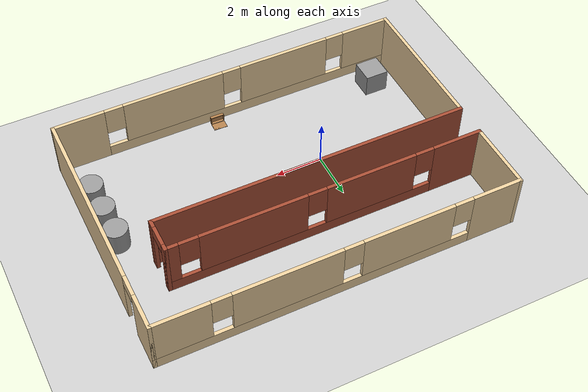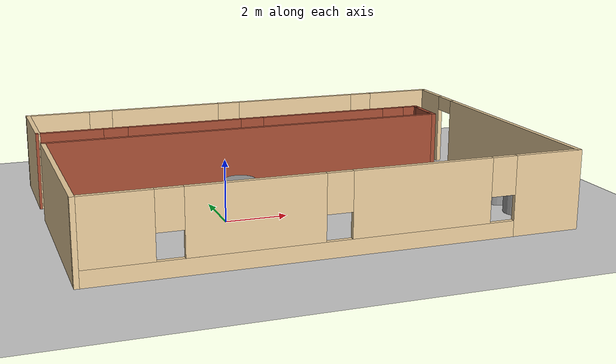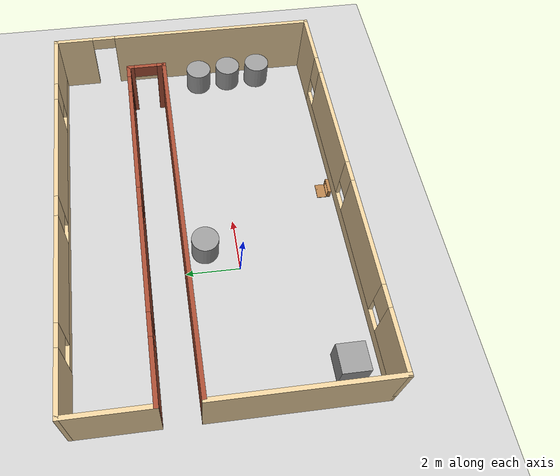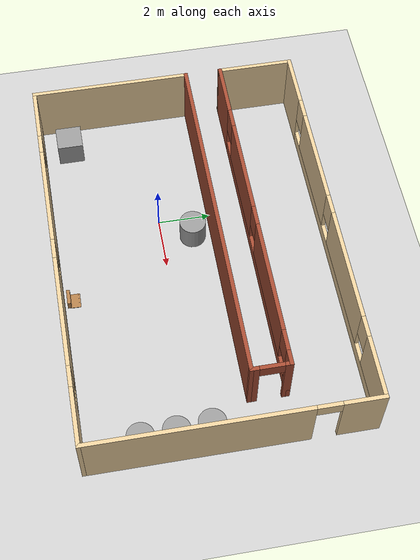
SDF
<sdf version="1.7">
 <world name="default">
  <light name="sun" type="directional">
   <pose>0 0 10 0 -0 0</pose>
   <diffuse>0.8 0.8 0.8 1</diffuse>
   <specular>0.2 0.2 0.2 1</specular>
   <attenuation>
    <range>1000</range>
    <constant>0.9</constant>
    <linear>0.01</linear>
    <quadratic>0.001</quadratic>
   </attenuation>
   <direction>-0.5 0.1 -0.9</direction>
   <spot><inner_angle>0</inner_angle><outer_angle>0</outer_angle><falloff>0</falloff></spot>
  </light>
  <model name="ground_plane">
   <static>1</static>
   <link name="link">
    <collision name="collision">
     <geometry><plane><normal>0 0 1</normal><size>100 100</size></plane></geometry>
     <surface><friction><ode><mu>100</mu><mu2>50</mu2></ode></friction></surface>
    </collision>
    <visual name="visual">
     <cast_shadows>0</cast_shadows>
     <geometry><plane><normal>0 0 1</normal><size>100 100</size></plane></geometry>
     <material>
      <script><uri>file://media/materials/scripts/gazebo.material</uri><name>Gazebo/Grey</name></script>
     </material>
    </visual>
   </link>
  </model>
  <gravity>0 0 -9.8</gravity>
  <magnetic_field>6e-06 2.3e-05 -4.2e-05</magnetic_field>
  <atmosphere type="adiabatic"/>
  <physics type="ode">
   <max_step_size>0.001</max_step_size>
   <real_time_factor>1</real_time_factor>
   <real_time_update_rate>1000</real_time_update_rate>
  </physics>
  <scene><ambient>0.4 0.4 0.4 1</ambient><background>0.7 0.7 0.7 1</background><shadows>1</shadows></scene>
  <audio><device>default</device></audio>
  <spherical_coordinates>
   <surface_model>EARTH_WGS84</surface_model>
   <latitude_deg>0</latitude_deg>
   <longitude_deg>0</longitude_deg>
   <elevation>0</elevation>
   <heading_deg>0</heading_deg>
  </spherical_coordinates>
  <model name="factory_1">
   <pose>2.30445 1.04451 0 0 -0 0</pose>
   <link name="Wall_1">
    <pose>-0 5.175 0 0 -0 0</pose>
    <visual name="Wall_1_Visual_0">
     <pose>-6.54406 0 1.25 0 -0 0</pose>
     <geometry><box><size>2.16188 0.15 2.5</size></box></geometry>
     <material>
      <script><uri>file://media/materials/scripts/gazebo.material</uri><name>Gazebo/Grey</name></script>
      <ambient>0.921569 0.807843 0.615686 1</ambient>
     </material>
     <meta><layer>0</layer></meta>
    </visual>
    <collision name="Wall_1_Collision_0">
     <geometry><box><size>2.16188 0.15 2.5</size></box></geometry>
     <pose>-6.54406 0 1.25 0 -0 0</pose>
    </collision>
    <visual name="Wall_1_Visual_1">
     <pose>1.08094 0 0.25 0 -0 0</pose>
     <geometry><box><size>13.0881 0.15 0.5</size></box></geometry>
     <material>
      <script><uri>file://media/materials/scripts/gazebo.material</uri><name>Gazebo/Grey</name></script>
      <ambient>0.921569 0.807843 0.615686 1</ambient>
     </material>
     <meta><layer>0</layer></meta>
    </visual>
    <collision name="Wall_1_Collision_1">
     <geometry><box><size>13.0881 0.15 0.5</size></box></geometry>
     <pose>1.08094 0 0.25 0 -0 0</pose>
    </collision>
    <visual name="Wall_1_Visual_2">
     <pose>-2.72373 0 1.5 0 -0 0</pose>
     <geometry><box><size>3.87878 0.15 2</size></box></geometry>
     <material>
      <script><uri>file://media/materials/scripts/gazebo.material</uri><name>Gazebo/Grey</name></script>
      <ambient>0.921569 0.807843 0.615686 1</ambient>
     </material>
     <meta><layer>0</layer></meta>
    </visual>
    <collision name="Wall_1_Collision_2">
     <geometry><box><size>3.87878 0.15 2</size></box></geometry>
     <pose>-2.72373 0 1.5 0 -0 0</pose>
    </collision>
    <visual name="Wall_1_Visual_3">
     <pose>2.23647 0 1.5 0 -0 0</pose>
     <geometry><box><size>4.44164 0.15 2</size></box></geometry>
     <material>
      <script><uri>file://media/materials/scripts/gazebo.material</uri><name>Gazebo/Grey</name></script>
      <ambient>0.921569 0.807843 0.615686 1</ambient>
     </material>
     <meta><layer>0</layer></meta>
    </visual>
    <collision name="Wall_1_Collision_3">
     <geometry><box><size>4.44164 0.15 2</size></box></geometry>
     <pose>2.23647 0 1.5 0 -0 0</pose>
    </collision>
    <visual name="Wall_1_Visual_4">
     <pose>6.44115 0 1.5 0 -0 0</pose>
     <geometry><box><size>2.36771 0.15 2</size></box></geometry>
     <material>
      <script><uri>file://media/materials/scripts/gazebo.material</uri><name>Gazebo/Grey</name></script>
      <ambient>0.921569 0.807843 0.615686 1</ambient>
     </material>
     <meta><layer>0</layer></meta>
    </visual>
    <collision name="Wall_1_Collision_4">
     <geometry><box><size>2.36771 0.15 2</size></box></geometry>
     <pose>6.44115 0 1.5 0 -0 0</pose>
    </collision>
    <visual name="Wall_1_Visual_5">
     <pose>-5.06312 0 1.9 0 -0 0</pose>
     <geometry><box><size>0.8 0.15 1.2</size></box></geometry>
     <material>
      <script><uri>file://media/materials/scripts/gazebo.material</uri><name>Gazebo/Grey</name></script>
      <ambient>0.921569 0.807843 0.615686 1</ambient>
     </material>
     <meta><layer>0</layer></meta>
    </visual>
    <collision name="Wall_1_Collision_5">
     <geometry><box><size>0.8 0.15 1.2</size></box></geometry>
     <pose>-5.06312 0 1.9 0 -0 0</pose>
    </collision>
    <visual name="Wall_1_Visual_6">
     <pose>-0.384343 0 1.9 0 -0 0</pose>
     <geometry><box><size>0.8 0.15 1.2</size></box></geometry>
     <material>
      <script><uri>file://media/materials/scripts/gazebo.material</uri><name>Gazebo/Grey</name></script>
      <ambient>0.921569 0.807843 0.615686 1</ambient>
     </material>
     <meta><layer>0</layer></meta>
    </visual>
    <collision name="Wall_1_Collision_6">
     <geometry><box><size>0.8 0.15 1.2</size></box></geometry>
     <pose>-0.384343 0 1.9 0 -0 0</pose>
    </collision>
    <visual name="Wall_1_Visual_7">
     <pose>4.85729 0 1.9 0 -0 0</pose>
     <geometry><box><size>0.8 0.15 1.2</size></box></geometry>
     <material>
      <script><uri>file://media/materials/scripts/gazebo.material</uri><name>Gazebo/Grey</name></script>
      <ambient>0.921569 0.807843 0.615686 1</ambient>
     </material>
     <meta><layer>0</layer></meta>
    </visual>
    <collision name="Wall_1_Collision_7">
     <geometry><box><size>0.8 0.15 1.2</size></box></geometry>
     <pose>4.85729 0 1.9 0 -0 0</pose>
    </collision>
   </link>
   <link name="Wall_11">
    <pose>-0.875 2.325 0 0 -0 0</pose>
    <visual name="Wall_11_Visual_0">
     <pose>-5.66233 0 1.25 0 -0 0</pose>
     <geometry><box><size>2.17534 0.15 2.5</size></box></geometry>
     <material>
      <script><uri>file://media/materials/scripts/gazebo.material</uri><name>Gazebo/Bricks</name></script>
      <ambient>1 1 1 1</ambient>
     </material>
     <meta><layer>0</layer></meta>
    </visual>
    <collision name="Wall_11_Collision_0">
     <geometry><box><size>2.17534 0.15 2.5</size></box></geometry>
     <pose>-5.66233 0 1.25 0 -0 0</pose>
    </collision>
    <visual name="Wall_11_Visual_1">
     <pose>1.08767 0 0.25 0 -0 0</pose>
     <geometry><box><size>11.3247 0.15 0.5</size></box></geometry>
     <material>
      <script><uri>file://media/materials/scripts/gazebo.material</uri><name>Gazebo/Bricks</name></script>
      <ambient>1 1 1 1</ambient>
     </material>
     <meta><layer>0</layer></meta>
    </visual>
    <collision name="Wall_11_Collision_1">
     <geometry><box><size>11.3247 0.15 0.5</size></box></geometry>
     <pose>1.08767 0 0.25 0 -0 0</pose>
    </collision>
    <visual name="Wall_11_Visual_2">
     <pose>-1.83384 0 1.5 0 -0 0</pose>
     <geometry><box><size>3.88164 0.15 2</size></box></geometry>
     <material>
      <script><uri>file://media/materials/scripts/gazebo.material</uri><name>Gazebo/Bricks</name></script>
      <ambient>1 1 1 1</ambient>
     </material>
     <meta><layer>0</layer></meta>
    </visual>
    <collision name="Wall_11_Collision_2">
     <geometry><box><size>3.88164 0.15 2</size></box></geometry>
     <pose>-1.83384 0 1.5 0 -0 0</pose>
    </collision>
    <visual name="Wall_11_Visual_3">
     <pose>3.1404 0 1.5 0 -0 0</pose>
     <geometry><box><size>4.46684 0.15 2</size></box></geometry>
     <material>
      <script><uri>file://media/materials/scripts/gazebo.material</uri><name>Gazebo/Bricks</name></script>
      <ambient>1 1 1 1</ambient>
     </material>
     <meta><layer>0</layer></meta>
    </visual>
    <collision name="Wall_11_Collision_3">
     <geometry><box><size>4.46684 0.15 2</size></box></geometry>
     <pose>3.1404 0 1.5 0 -0 0</pose>
    </collision>
    <visual name="Wall_11_Visual_4">
     <pose>6.46191 0 1.5 0 -0 0</pose>
     <geometry><box><size>0.576184 0.15 2</size></box></geometry>
     <material>
      <script><uri>file://media/materials/scripts/gazebo.material</uri><name>Gazebo/Bricks</name></script>
      <ambient>1 1 1 1</ambient>
     </material>
     <meta><layer>0</layer></meta>
    </visual>
    <collision name="Wall_11_Collision_4">
     <geometry><box><size>0.576184 0.15 2</size></box></geometry>
     <pose>6.46191 0 1.5 0 -0 0</pose>
    </collision>
    <visual name="Wall_11_Visual_5">
     <pose>-4.17466 0 1.9 0 -0 0</pose>
     <geometry><box><size>0.8 0.15 1.2</size></box></geometry>
     <material>
      <script><uri>file://media/materials/scripts/gazebo.material</uri><name>Gazebo/Bricks</name></script>
      <ambient>1 1 1 1</ambient>
     </material>
     <meta><layer>0</layer></meta>
    </visual>
    <collision name="Wall_11_Collision_5">
     <geometry><box><size>0.8 0.15 1.2</size></box></geometry>
     <pose>-4.17466 0 1.9 0 -0 0</pose>
    </collision>
    <visual name="Wall_11_Visual_6">
     <pose>0.506977 0 1.9 0 -0 0</pose>
     <geometry><box><size>0.8 0.15 1.2</size></box></geometry>
     <material>
      <script><uri>file://media/materials/scripts/gazebo.material</uri><name>Gazebo/Bricks</name></script>
      <ambient>1 1 1 1</ambient>
     </material>
     <meta><layer>0</layer></meta>
    </visual>
    <collision name="Wall_11_Collision_6">
     <geometry><box><size>0.8 0.15 1.2</size></box></geometry>
     <pose>0.506977 0 1.9 0 -0 0</pose>
    </collision>
    <visual name="Wall_11_Visual_7">
     <pose>5.77382 0 1.9 0 -0 0</pose>
     <geometry><box><size>0.8 0.15 1.2</size></box></geometry>
     <material>
      <script><uri>file://media/materials/scripts/gazebo.material</uri><name>Gazebo/Bricks</name></script>
      <ambient>1 1 1 1</ambient>
     </material>
     <meta><layer>0</layer></meta>
    </visual>
    <collision name="Wall_11_Collision_7">
     <geometry><box><size>0.8 0.15 1.2</size></box></geometry>
     <pose>5.77382 0 1.9 0 -0 0</pose>
    </collision>
   </link>
   <link name="Wall_12">
    <pose>5.8 1.625 0 0 -0 -1.5708</pose>
    <visual name="Wall_12_Visual_0">
     <pose>-0.628373 0 1.25 0 -0 0</pose>
     <geometry><box><size>0.293253 0.15 2.5</size></box></geometry>
     <material>
      <script><uri>file://media/materials/scripts/gazebo.material</uri><name>Gazebo/Bricks</name></script>
      <ambient>1 1 1 1</ambient>
     </material>
     <meta><layer>0</layer></meta>
    </visual>
    <collision name="Wall_12_Collision_0">
     <geometry><box><size>0.293253 0.15 2.5</size></box></geometry>
     <pose>-0.628373 0 1.25 0 -0 0</pose>
    </collision>
    <visual name="Wall_12_Visual_1">
     <pose>0.596627 0 1.25 0 -0 0</pose>
     <geometry><box><size>0.356747 0.15 2.5</size></box></geometry>
     <material>
      <script><uri>file://media/materials/scripts/gazebo.material</uri><name>Gazebo/Bricks</name></script>
      <ambient>1 1 1 1</ambient>
     </material>
     <meta><layer>0</layer></meta>
    </visual>
    <collision name="Wall_12_Collision_1">
     <geometry><box><size>0.356747 0.15 2.5</size></box></geometry>
     <pose>0.596627 0 1.25 0 -0 0</pose>
    </collision>
    <visual name="Wall_12_Visual_2">
     <pose>-0.031747 0 2.25 0 -0 0</pose>
     <geometry><box><size>0.9 0.15 0.5</size></box></geometry>
     <material>
      <script><uri>file://media/materials/scripts/gazebo.material</uri><name>Gazebo/Bricks</name></script>
      <ambient>1 1 1 1</ambient>
     </material>
     <meta><layer>0</layer></meta>
    </visual>
    <collision name="Wall_12_Collision_2">
     <geometry><box><size>0.9 0.15 0.5</size></box></geometry>
     <pose>-0.031747 0 2.25 0 -0 0</pose>
    </collision>
   </link>
   <link name="Wall_2">
    <pose>7.55 -0 0 0 -0 -1.5708</pose>
    <visual name="Wall_2_Visual_0">
     <pose>-4.47638 0 1.25 0 -0 0</pose>
     <geometry><box><size>1.54724 0.15 2.5</size></box></geometry>
     <material>
      <script><uri>file://media/materials/scripts/gazebo.material</uri><name>Gazebo/Grey</name></script>
      <ambient>0.921569 0.807843 0.615686 1</ambient>
     </material>
     <meta><layer>0</layer></meta>
    </visual>
    <collision name="Wall_2_Collision_0">
     <geometry><box><size>1.54724 0.15 2.5</size></box></geometry>
     <pose>-4.47638 0 1.25 0 -0 0</pose>
    </collision>
    <visual name="Wall_2_Visual_1">
     <pose>1.22362 0 1.25 0 -0 0</pose>
     <geometry><box><size>8.05276 0.15 2.5</size></box></geometry>
     <material>
      <script><uri>file://media/materials/scripts/gazebo.material</uri><name>Gazebo/Grey</name></script>
      <ambient>0.921569 0.807843 0.615686 1</ambient>
     </material>
     <meta><layer>0</layer></meta>
    </visual>
    <collision name="Wall_2_Collision_1">
     <geometry><box><size>8.05276 0.15 2.5</size></box></geometry>
     <pose>1.22362 0 1.25 0 -0 0</pose>
    </collision>
    <visual name="Wall_2_Visual_2">
     <pose>-3.25276 0 2.25 0 -0 0</pose>
     <geometry><box><size>0.9 0.15 0.5</size></box></geometry>
     <material>
      <script><uri>file://media/materials/scripts/gazebo.material</uri><name>Gazebo/Grey</name></script>
      <ambient>0.921569 0.807843 0.615686 1</ambient>
     </material>
     <meta><layer>0</layer></meta>
    </visual>
    <collision name="Wall_2_Collision_2">
     <geometry><box><size>0.9 0.15 0.5</size></box></geometry>
     <pose>-3.25276 0 2.25 0 -0 0</pose>
    </collision>
   </link>
   <link name="Wall_3">
    <pose>-0 -5.175 0 0 -0 3.14159</pose>
    <visual name="Wall_3_Visual_0">
     <pose>-6.51511 0 1.25 0 -0 0</pose>
     <geometry><box><size>2.21978 0.15 2.5</size></box></geometry>
     <material>
      <script><uri>file://media/materials/scripts/gazebo.material</uri><name>Gazebo/Grey</name></script>
      <ambient>0.921569 0.807843 0.615686 1</ambient>
     </material>
     <meta><layer>0</layer></meta>
    </visual>
    <collision name="Wall_3_Collision_0">
     <geometry><box><size>2.21978 0.15 2.5</size></box></geometry>
     <pose>-6.51511 0 1.25 0 -0 0</pose>
    </collision>
    <visual name="Wall_3_Visual_1">
     <pose>1.10989 0 0.25 0 -0 0</pose>
     <geometry><box><size>13.0302 0.15 0.5</size></box></geometry>
     <material>
      <script><uri>file://media/materials/scripts/gazebo.material</uri><name>Gazebo/Grey</name></script>
      <ambient>0.921569 0.807843 0.615686 1</ambient>
     </material>
     <meta><layer>0</layer></meta>
    </visual>
    <collision name="Wall_3_Collision_1">
     <geometry><box><size>13.0302 0.15 0.5</size></box></geometry>
     <pose>1.10989 0 0.25 0 -0 0</pose>
    </collision>
    <visual name="Wall_3_Visual_2">
     <pose>-2.4117 0 1.5 0 -0 0</pose>
     <geometry><box><size>4.38704 0.15 2</size></box></geometry>
     <material>
      <script><uri>file://media/materials/scripts/gazebo.material</uri><name>Gazebo/Grey</name></script>
      <ambient>0.921569 0.807843 0.615686 1</ambient>
     </material>
     <meta><layer>0</layer></meta>
    </visual>
    <collision name="Wall_3_Collision_2">
     <geometry><box><size>4.38704 0.15 2</size></box></geometry>
     <pose>-2.4117 0 1.5 0 -0 0</pose>
    </collision>
    <visual name="Wall_3_Visual_3">
     <pose>2.60244 0 1.5 0 -0 0</pose>
     <geometry><box><size>4.04124 0.15 2</size></box></geometry>
     <material>
      <script><uri>file://media/materials/scripts/gazebo.material</uri><name>Gazebo/Grey</name></script>
      <ambient>0.921569 0.807843 0.615686 1</ambient>
     </material>
     <meta><layer>0</layer></meta>
    </visual>
    <collision name="Wall_3_Collision_3">
     <geometry><box><size>4.04124 0.15 2</size></box></geometry>
     <pose>2.60244 0 1.5 0 -0 0</pose>
    </collision>
    <visual name="Wall_3_Visual_4">
     <pose>6.52403 0 1.5 0 -0 0</pose>
     <geometry><box><size>2.20194 0.15 2</size></box></geometry>
     <material>
      <script><uri>file://media/materials/scripts/gazebo.material</uri><name>Gazebo/Grey</name></script>
      <ambient>0.921569 0.807843 0.615686 1</ambient>
     </material>
     <meta><layer>0</layer></meta>
    </visual>
    <collision name="Wall_3_Collision_4">
     <geometry><box><size>2.20194 0.15 2</size></box></geometry>
     <pose>6.52403 0 1.5 0 -0 0</pose>
    </collision>
    <visual name="Wall_3_Visual_5">
     <pose>-5.00522 0 1.9 0 -0 0</pose>
     <geometry><box><size>0.8 0.15 1.2</size></box></geometry>
     <material>
      <script><uri>file://media/materials/scripts/gazebo.material</uri><name>Gazebo/Grey</name></script>
      <ambient>0.921569 0.807843 0.615686 1</ambient>
     </material>
     <meta><layer>0</layer></meta>
    </visual>
    <collision name="Wall_3_Collision_5">
     <geometry><box><size>0.8 0.15 1.2</size></box></geometry>
     <pose>-5.00522 0 1.9 0 -0 0</pose>
    </collision>
    <visual name="Wall_3_Visual_6">
     <pose>0.181822 0 1.9 0 -0 0</pose>
     <geometry><box><size>0.8 0.15 1.2</size></box></geometry>
     <material>
      <script><uri>file://media/materials/scripts/gazebo.material</uri><name>Gazebo/Grey</name></script>
      <ambient>0.921569 0.807843 0.615686 1</ambient>
     </material>
     <meta><layer>0</layer></meta>
    </visual>
    <collision name="Wall_3_Collision_6">
     <geometry><box><size>0.8 0.15 1.2</size></box></geometry>
     <pose>0.181822 0 1.9 0 -0 0</pose>
    </collision>
    <visual name="Wall_3_Visual_7">
     <pose>5.02306 0 1.9 0 -0 0</pose>
     <geometry><box><size>0.8 0.15 1.2</size></box></geometry>
     <material>
      <script><uri>file://media/materials/scripts/gazebo.material</uri><name>Gazebo/Grey</name></script>
      <ambient>0.921569 0.807843 0.615686 1</ambient>
     </material>
     <meta><layer>0</layer></meta>
    </visual>
    <collision name="Wall_3_Collision_7">
     <geometry><box><size>0.8 0.15 1.2</size></box></geometry>
     <pose>5.02306 0 1.9 0 -0 0</pose>
    </collision>
   </link>
   <link name="Wall_6">
    <collision name="Wall_6_Collision">
     <geometry><box><size>3 0.15 2.5</size></box></geometry>
     <pose>0 0 1.25 0 -0 0</pose>
    </collision>
    <visual name="Wall_6_Visual">
     <pose>0 0 1.25 0 -0 0</pose>
     <geometry><box><size>3 0.15 2.5</size></box></geometry>
     <material>
      <script><uri>file://media/materials/scripts/gazebo.material</uri><name>Gazebo/Grey</name></script>
      <ambient>0.921569 0.807843 0.615686 1</ambient>
     </material>
     <meta><layer>0</layer></meta>
    </visual>
    <pose>-7.55 3.75 0 0 -0 -1.5708</pose>
   </link>
   <link name="Wall_8">
    <collision name="Wall_8_Collision">
     <geometry><box><size>6.25 0.15 2.5</size></box></geometry>
     <pose>0 0 1.25 0 -0 0</pose>
    </collision>
    <visual name="Wall_8_Visual">
     <pose>0 0 1.25 0 -0 0</pose>
     <geometry><box><size>6.25 0.15 2.5</size></box></geometry>
     <material>
      <script><uri>file://media/materials/scripts/gazebo.material</uri><name>Gazebo/Grey</name></script>
      <ambient>0.921569 0.807843 0.615686 1</ambient>
     </material>
     <meta><layer>0</layer></meta>
    </visual>
    <pose>-7.55 -2.125 0 0 -0 1.5708</pose>
   </link>
   <link name="Wall_9">
    <collision name="Wall_9_Collision">
     <geometry><box><size>13.5 0.15 2.5</size></box></geometry>
     <pose>0 0 1.25 0 -0 0</pose>
    </collision>
    <visual name="Wall_9_Visual">
     <pose>0 0 1.25 0 -0 0</pose>
     <geometry><box><size>13.5 0.15 2.5</size></box></geometry>
     <material>
      <script><uri>file://media/materials/scripts/gazebo.material</uri><name>Gazebo/Bricks</name></script>
      <ambient>1 1 1 1</ambient>
     </material>
     <meta><layer>0</layer></meta>
    </visual>
    <pose>-0.875 0.925 0 0 -0 0</pose>
   </link>
   <static>1</static>
  </model>
  <model name="unit_box">
   <pose>-4.05913 -3.0234 0.499995 0 1e-05 -5e-06</pose>
   <link name="link">
    <inertial>
     <mass>1</mass>
     <inertia>
      <ixx>0.166667</ixx>
      <ixy>0</ixy>
      <ixz>0</ixz>
      <iyy>0.166667</iyy>
      <iyz>0</iyz>
      <izz>0.166667</izz>
     </inertia>
    </inertial>
    <collision name="collision"><geometry><box><size>1 1 1</size></box></geometry></collision>
    <visual name="visual">
     <geometry><box><size>1 1 1</size></box></geometry>
     <material>
      <script><name>Gazebo/Grey</name><uri>file://media/materials/scripts/gazebo.material</uri></script>
     </material>
    </visual>
   </link>
  </model>
  <model name="unit_cylinder">
   <pose>9.11223 0.471762 0.499994 -3e-06 -1e-06 -0</pose>
   <link name="link">
    <inertial>
     <mass>1</mass>
     <inertia><ixx>0.145833</ixx><ixy>0</ixy><ixz>0</ixz><iyy>0.145833</iyy><iyz>0</iyz><izz>0.125</izz></inertia>
    </inertial>
    <collision name="collision">
     <geometry><cylinder><radius>0.5</radius><length>1</length></cylinder></geometry>
    </collision>
    <visual name="visual">
     <geometry><cylinder><radius>0.5</radius><length>1</length></cylinder></geometry>
     <material>
      <script><name>Gazebo/Grey</name><uri>file://media/materials/scripts/gazebo.material</uri></script>
     </material>
    </visual>
   </link>
  </model>
  <model name="unit_cylinder_0">
   <pose>9.17866 -0.784456 0.499996 3e-06 1e-06 -0</pose>
   <link name="link">
    <inertial>
     <mass>1</mass>
     <inertia><ixx>0.145833</ixx><ixy>0</ixy><ixz>0</ixz><iyy>0.145833</iyy><iyz>0</iyz><izz>0.125</izz></inertia>
    </inertial>
    <collision name="collision">
     <geometry><cylinder><radius>0.5</radius><length>1</length></cylinder></geometry>
    </collision>
    <visual name="visual">
     <geometry><cylinder><radius>0.5</radius><length>1</length></cylinder></geometry>
     <material>
      <script><name>Gazebo/Grey</name><uri>file://media/materials/scripts/gazebo.material</uri></script>
     </material>
    </visual>
   </link>
  </model>
  <model name="unit_cylinder_1">
   <pose>9.21097 -2.04979 0.499994 -3e-06 -1e-06 -0</pose>
   <link name="link">
    <inertial>
     <mass>1</mass>
     <inertia><ixx>0.145833</ixx><ixy>0</ixy><ixz>0</ixz><iyy>0.145833</iyy><iyz>0</iyz><izz>0.125</izz></inertia>
    </inertial>
    <collision name="collision">
     <geometry><cylinder><radius>0.5</radius><length>1</length></cylinder></geometry>
    </collision>
    <visual name="visual">
     <geometry><cylinder><radius>0.5</radius><length>1</length></cylinder></geometry>
     <material>
      <script><name>Gazebo/Grey</name><uri>file://media/materials/scripts/gazebo.material</uri></script>
     </material>
    </visual>
   </link>
  </model>
  <model name="wooden_case_metal_peg">
   <frame name="wooden_case::__model__" attached_to="wooden_case::base">
    <pose relative_to="__model__">0 0 0 0 -0 0</pose>
   </frame>
   <link name="wooden_case::base">
    <pose relative_to="wooden_case::__model__">0 0 0.024 0 -0 0</pose>
    <inertial>
     <pose>-0.022184 0 0.171592 0 -0 0</pose>
     <mass>3.96264</mass>
     <inertia>
      <ixx>0.213536</ixx>
      <ixy>0</ixy>
      <ixz>0.000779377</ixz>
      <iyy>0.0708943</iyy>
      <iyz>0</iyz>
      <izz>0.154604</izz>
     </inertia>
    </inertial>
    <collision name="collision_back">
     <pose>-0.053975 0 0.1778 0 -0 0</pose>
     <geometry><box><size>0.01905 0.5461 0.3175</size></box></geometry>
     <surface>
      <contact>
       <poissons_ratio>0.347</poissons_ratio>
       <elastic_modulus>8.8e+09</elastic_modulus>
       <ode><kp>100000</kp><kd>100</kd><max_vel>100</max_vel><min_depth>0.001</min_depth></ode>
      </contact>
      <friction>
       <torsional>
        <coefficient>1</coefficient>
        <use_patch_radius>0</use_patch_radius>
        <surface_radius>0.01</surface_radius>
       </torsional>
      </friction>
     </surface>
    </collision>
    <visual name="visual_back">
     <pose>-0.053975 0 0.1778 0 -0 0</pose>
     <geometry><box><size>0.01905 0.5461 0.3175</size></box></geometry>
     <material>
      <script><uri>file://media/materials/scripts/gazebo.material</uri><name>Gazebo/Wood</name></script>
     </material>
    </visual>
    <collision name="collision_bottom">
     <pose>0 0 0.009525 0 -0 0</pose>
     <geometry><box><size>0.127 0.5842 0.01905</size></box></geometry>
     <surface>
      <contact>
       <poissons_ratio>0.347</poissons_ratio>
       <elastic_modulus>8.8e+09</elastic_modulus>
       <ode><kp>100000</kp><kd>100</kd><max_vel>100</max_vel><min_depth>0.001</min_depth></ode>
      </contact>
      <friction>
       <torsional>
        <coefficient>1</coefficient>
        <use_patch_radius>0</use_patch_radius>
        <surface_radius>0.01</surface_radius>
       </torsional>
      </friction>
     </surface>
    </collision>
    <visual name="visual_bottom">
     <pose>0 0 0.009525 0 -0 0</pose>
     <geometry><box><size>0.127 0.5842 0.01905</size></box></geometry>
     <material>
      <script><uri>file://media/materials/scripts/gazebo.material</uri><name>Gazebo/Wood</name></script>
     </material>
    </visual>
    <collision name="collision_top">
     <pose>0 0 0.346075 0 -0 0</pose>
     <geometry><box><size>0.127 0.5842 0.01905</size></box></geometry>
     <surface>
      <contact>
       <poissons_ratio>0.347</poissons_ratio>
       <elastic_modulus>8.8e+09</elastic_modulus>
       <ode><kp>100000</kp><kd>100</kd><max_vel>100</max_vel><min_depth>0.001</min_depth></ode>
      </contact>
      <friction>
       <torsional>
        <coefficient>1</coefficient>
        <use_patch_radius>0</use_patch_radius>
        <surface_radius>0.01</surface_radius>
       </torsional>
      </friction>
     </surface>
    </collision>
    <visual name="visual_top">
     <pose>0 0 0.346075 0 -0 0</pose>
     <geometry><box><size>0.127 0.5842 0.01905</size></box></geometry>
     <material>
      <script><uri>file://media/materials/scripts/gazebo.material</uri><name>Gazebo/Wood</name></script>
     </material>
    </visual>
    <collision name="collision_left">
     <pose>0 -0.282575 0.1778 0 -0 0</pose>
     <geometry><box><size>0.127 0.01905 0.3175</size></box></geometry>
     <surface>
      <contact>
       <poissons_ratio>0.347</poissons_ratio>
       <elastic_modulus>8.8e+09</elastic_modulus>
       <ode><kp>100000</kp><kd>100</kd><max_vel>100</max_vel><min_depth>0.001</min_depth></ode>
      </contact>
      <friction>
       <torsional>
        <coefficient>1</coefficient>
        <use_patch_radius>0</use_patch_radius>
        <surface_radius>0.01</surface_radius>
       </torsional>
      </friction>
     </surface>
    </collision>
    <visual name="visual_left">
     <pose>0 -0.282575 0.1778 0 -0 0</pose>
     <geometry><box><size>0.127 0.01905 0.3175</size></box></geometry>
     <material>
      <script><uri>file://media/materials/scripts/gazebo.material</uri><name>Gazebo/Wood</name></script>
     </material>
    </visual>
    <collision name="collision_right">
     <pose>0 0.282575 0.1778 0 -0 0</pose>
     <geometry><box><size>0.127 0.01905 0.3175</size></box></geometry>
     <surface>
      <contact>
       <poissons_ratio>0.347</poissons_ratio>
       <elastic_modulus>8.8e+09</elastic_modulus>
       <ode><kp>100000</kp><kd>100</kd><max_vel>100</max_vel><min_depth>0.001</min_depth></ode>
      </contact>
      <friction>
       <torsional>
        <coefficient>1</coefficient>
        <use_patch_radius>0</use_patch_radius>
        <surface_radius>0.01</surface_radius>
       </torsional>
      </friction>
     </surface>
    </collision>
    <visual name="visual_right">
     <pose>0 0.282575 0.1778 0 -0 0</pose>
     <geometry><box><size>0.127 0.01905 0.3175</size></box></geometry>
     <material>
      <script><uri>file://media/materials/scripts/gazebo.material</uri><name>Gazebo/Wood</name></script>
     </material>
    </visual>
    <collision name="collision_block_left">
     <pose>0.0095 -0.2151 -0.012 0 -0 0</pose>
     <geometry><box><size>0.108 0.05 0.024</size></box></geometry>
     <surface>
      <contact>
       <poissons_ratio>0.347</poissons_ratio>
       <elastic_modulus>8.8e+09</elastic_modulus>
       <ode><kp>100000</kp><kd>100</kd><max_vel>100</max_vel><min_depth>0.001</min_depth></ode>
      </contact>
      <friction>
       <torsional>
        <coefficient>1</coefficient>
        <use_patch_radius>0</use_patch_radius>
        <surface_radius>0.01</surface_radius>
       </torsional>
      </friction>
     </surface>
    </collision>
    <visual name="visual_block_left">
     <pose>0.0095 -0.2151 -0.012 0 -0 0</pose>
     <geometry><box><size>0.108 0.05 0.024</size></box></geometry>
     <material>
      <script><uri>file://media/materials/scripts/gazebo.material</uri><name>Gazebo/Wood</name></script>
     </material>
    </visual>
    <collision name="collision_block_right">
     <pose>0.0095 0.2151 -0.012 0 -0 0</pose>
     <geometry><box><size>0.108 0.05 0.024</size></box></geometry>
     <surface>
      <contact>
       <poissons_ratio>0.347</poissons_ratio>
       <elastic_modulus>8.8e+09</elastic_modulus>
       <ode><kp>100000</kp><kd>100</kd><max_vel>100</max_vel><min_depth>0.001</min_depth></ode>
      </contact>
      <friction>
       <torsional>
        <coefficient>1</coefficient>
        <use_patch_radius>0</use_patch_radius>
        <surface_radius>0.01</surface_radius>
       </torsional>
      </friction>
     </surface>
    </collision>
    <visual name="visual_block_right">
     <pose>0.0095 0.2151 -0.012 0 -0 0</pose>
     <geometry><box><size>0.108 0.05 0.024</size></box></geometry>
     <material>
      <script><uri>file://media/materials/scripts/gazebo.material</uri><name>Gazebo/Wood</name></script>
     </material>
    </visual>
   </link>
   <link name="wooden_case::lid">
    <pose relative_to="wooden_case::__model__">0.243775 0 0.009525 0 -0 0</pose>
    <inertial>
     <mass>1.97874</mass>
     <inertia>
      <ixx>0.0563367</ixx>
      <ixy>0</ixy>
      <ixz>0</ixz>
      <iyy>0.020911</iyy>
      <iyz>0</iyz>
      <izz>0.0771281</izz>
     </inertia>
    </inertial>
    <collision name="collision">
     <geometry><box><size>0.3556 0.5842 0.01905</size></box></geometry>
     <surface>
      <contact>
       <poissons_ratio>0.347</poissons_ratio>
       <elastic_modulus>8.8e+09</elastic_modulus>
       <ode><kp>100000</kp><kd>100</kd><max_vel>100</max_vel><min_depth>0.001</min_depth></ode>
      </contact>
      <friction>
       <torsional>
        <coefficient>1</coefficient>
        <use_patch_radius>0</use_patch_radius>
        <surface_radius>0.01</surface_radius>
       </torsional>
      </friction>
     </surface>
    </collision>
    <visual name="visual">
     <geometry><box><size>0.3556 0.5842 0.01905</size></box></geometry>
     <material>
      <script><uri>file://media/materials/scripts/gazebo.material</uri><name>Gazebo/Wood</name></script>
     </material>
    </visual>
    <visual name="tee_nut_1">
     <pose>0.122 -0.216 0 0 -0 0</pose>
     <geometry><cylinder><radius>0.00635</radius><length>0.0192405</length></cylinder></geometry>
     <material>
      <script><uri>file://media/materials/scripts/gazebo.material</uri><name>Gazebo/Grey</name></script>
     </material>
    </visual>
    <visual name="tee_nut_2">
     <pose>0.122 -0.088 0 0 -0 0</pose>
     <geometry><cylinder><radius>0.00635</radius><length>0.0192405</length></cylinder></geometry>
     <material>
      <script><uri>file://media/materials/scripts/gazebo.material</uri><name>Gazebo/Grey</name></script>
     </material>
    </visual>
    <visual name="tee_nut_3">
     <pose>0.122 0.088 0 0 -0 0</pose>
     <geometry><cylinder><radius>0.00635</radius><length>0.0192405</length></cylinder></geometry>
     <material>
      <script><uri>file://media/materials/scripts/gazebo.material</uri><name>Gazebo/Grey</name></script>
     </material>
    </visual>
    <visual name="tee_nut_4">
     <pose>0.122 0.216 0 0 -0 0</pose>
     <geometry><cylinder><radius>0.00635</radius><length>0.0192405</length></cylinder></geometry>
     <material>
      <script><uri>file://media/materials/scripts/gazebo.material</uri><name>Gazebo/Grey</name></script>
     </material>
    </visual>
   </link>
   <joint name="wooden_case::lid_hinge" type="revolute">
    <pose>-0.1778 0 0.01905 0 -0 0</pose>
    <parent>wooden_case::base</parent>
    <child>wooden_case::lid</child>
    <axis>
     <xyz>0 1 0</xyz>
     <limit><upper>0.523599</upper><lower>-1.5708</lower></limit>
     <dynamics><spring_reference>0</spring_reference><spring_stiffness>0</spring_stiffness></dynamics>
    </axis>
   </joint>
   <frame name="peg::__model__" attached_to="peg::link">
    <pose relative_to="__model__">0.365774 0.216 0.01905 0 -0 0</pose>
   </frame>
   <link name="peg::link">
    <pose relative_to="peg::__model__">0 0 0.031 0 -0 0</pose>
    <inertial>
     <mass>0.0121</mass>
     <inertia>
      <ixx>3.90898e-06</ixx>
      <ixy>0</ixy>
      <ixz>0</ixz>
      <iyy>3.90898e-06</iyy>
      <iyz>0</iyz>
      <izz>6.58845e-08</izz>
     </inertia>
    </inertial>
    <collision name="collision">
     <geometry><cylinder><radius>0.0033</radius><length>0.062</length></cylinder></geometry>
     <surface>
      <contact>
       <poissons_ratio>0.305</poissons_ratio>
       <elastic_modulus>2e+11</elastic_modulus>
       <ode><kp>100000</kp><kd>100</kd><max_vel>100</max_vel><min_depth>0.001</min_depth></ode>
      </contact>
      <friction>
       <torsional>
        <coefficient>1</coefficient>
        <use_patch_radius>0</use_patch_radius>
        <surface_radius>0.01</surface_radius>
       </torsional>
      </friction>
     </surface>
    </collision>
    <visual name="visual">
     <geometry><cylinder><radius>0.0033</radius><length>0.062</length></cylinder></geometry>
     <material>
      <script><uri>file://media/materials/scripts/gazebo.material</uri><name>Gazebo/Grey</name></script>
     </material>
    </visual>
   </link>
   <joint name="case_peg" type="revolute">
    <child>peg::link</child>
    <parent>wooden_case::lid</parent>
    <axis>
     <xyz>0 0 1</xyz>
     <limit><upper>0</upper><lower>0</lower></limit>
     <dynamics><spring_reference>0</spring_reference><spring_stiffness>0</spring_stiffness></dynamics>
    </axis>
   </joint>
   <pose>2.97148 -3.88 -0.001057 0 -0.000427 1.55</pose>
  </model>
  <model name="unit_cylinder_2">
   <pose>0.845167 1.19836 0.499996 3e-06 2e-06 0</pose>
   <link name="link">
    <inertial>
     <mass>1</mass>
     <inertia><ixx>0.145833</ixx><ixy>0</ixy><ixz>0</ixz><iyy>0.145833</iyy><iyz>0</iyz><izz>0.125</izz></inertia>
    </inertial>
    <collision name="collision">
     <geometry><cylinder><radius>0.5</radius><length>1</length></cylinder></geometry>
    </collision>
    <visual name="visual">
     <geometry><cylinder><radius>0.5</radius><length>1</length></cylinder></geometry>
     <material>
      <script><name>Gazebo/Grey</name><uri>file://media/materials/scripts/gazebo.material</uri></script>
     </material>
    </visual>
   </link>
  </model>
 </world>
</sdf>
